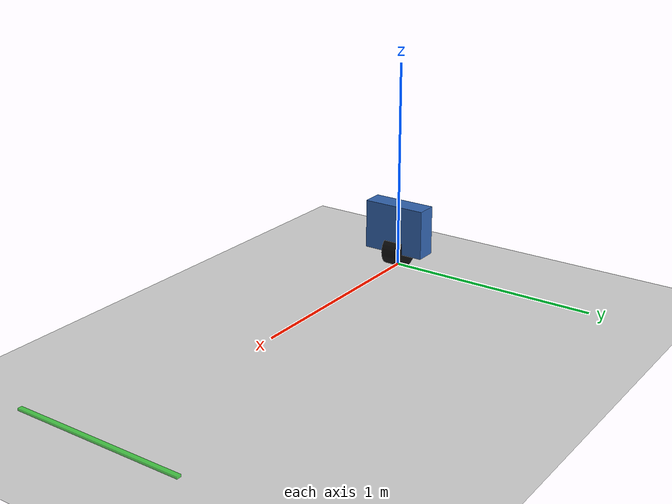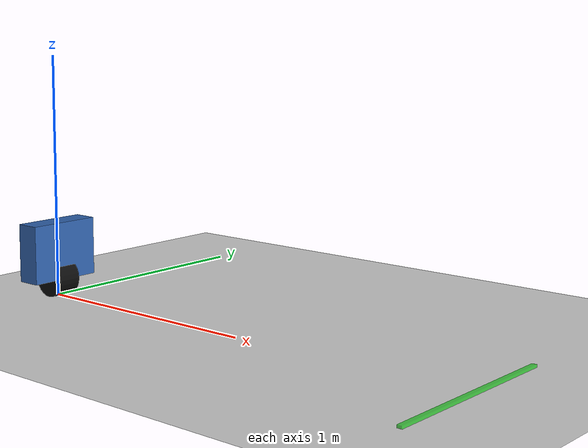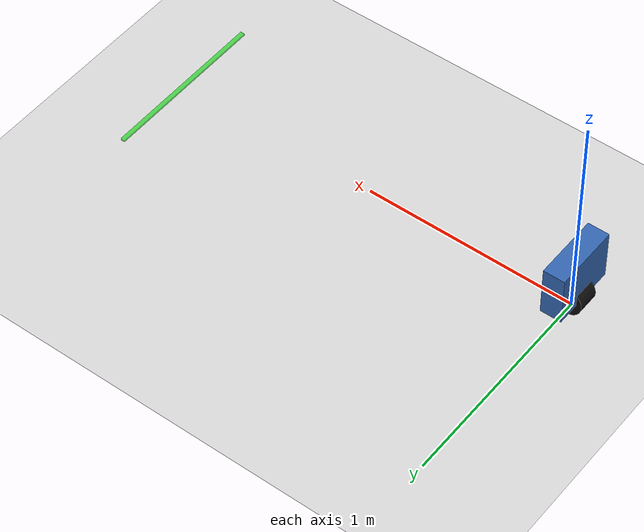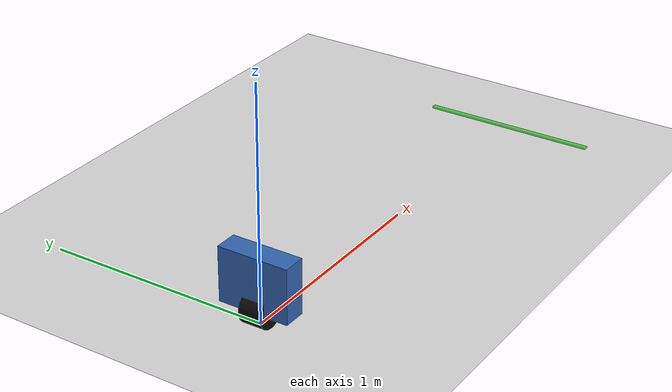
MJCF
<?xml version="1.0"?>
<mujoco model="segway_1d_wheel">

  <option timestep="0.002" gravity="0 0 -9.81" integrator="Euler"/>

  <visual>
    <headlight diffuse="1 1 1" ambient="0.8 0.8 0.8" specular="0.3 0.3 0.3"/>
  </visual>

  <default>
    <default class="wheel">
      <geom type="cylinder" friction="2 0.005 0.0001"/>
    </default>
  </default>

  <worldbody>
    <!-- Plain light grey floor, no checkerboard -->
    <geom name="ground" type="plane" size="5 5 .05"
          pos="0 0 0" rgba="0.85 0.85 0.85 1"
          contype="1" conaffinity="1"/>
    <!-- Bright overhead light -->
    <light name="top" pos="0 0 8" dir="0 0 -1"
           diffuse="1 1 1" specular="0.4 0.4 0.4" directional="true"/>
    <!-- Side fill light to remove harsh shadows -->
    <light name="fill" pos="4 -4 5" dir="-1 1 -1"
           diffuse="0.6 0.6 0.6" specular="0.1 0.1 0.1" directional="true"/>

    <!-- Goal marker at x=2 m -->
    <geom name="goal_line" type="box"
          pos="2.0 0 0.005" size="0.01 0.4 0.005"
          rgba="0.1 0.85 0.1 0.7" contype="0" conaffinity="0"/>

    <body name="segway" pos="0 0 0.075">
      <freejoint name="root"/>

      <!-- Chassis (identical to Ozzy's) -->
      <geom name="chassis" type="box"
            size="0.05 0.155 0.12" pos="0 0 0.12"
            mass="4.75" rgba="0.2 0.4 0.7 1"/>

      <!-- Ground wheel (identical to Ozzy's) -->
      <body name="ground_wheel" pos="0 0 0" quat="0.7071 0.7071 0 0">
        <joint name="joint_ground_wheel" type="hinge" axis="0 0 1" damping="0.05"/>
        <geom name="wheel_geom" class="wheel"
              size="0.075 0.05" mass="0.32" rgba="0.05 0.05 0.05 1"/>
      </body>

      <!-- Reaction wheel REMOVED -->

    </body>
  </worldbody>

  <!-- Single wheel motor only (reaction wheel motor REMOVED) -->
  <actuator>
    <motor name="wheel_motor" joint="joint_ground_wheel"
           gear="1" ctrlrange="-5.0 5.0"/>
  </actuator>

</mujoco>
